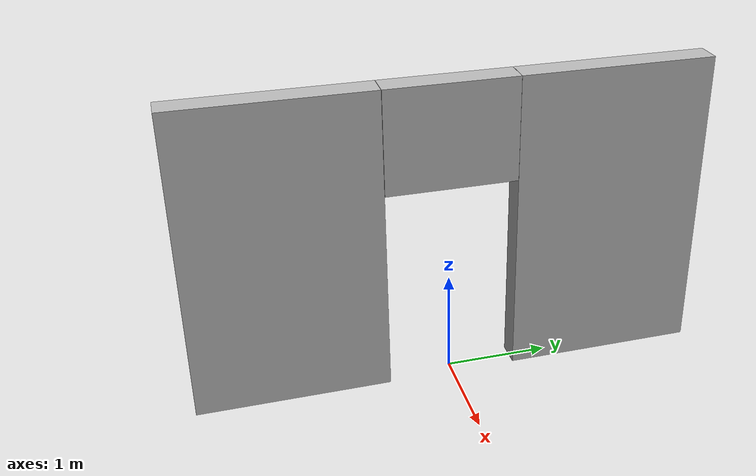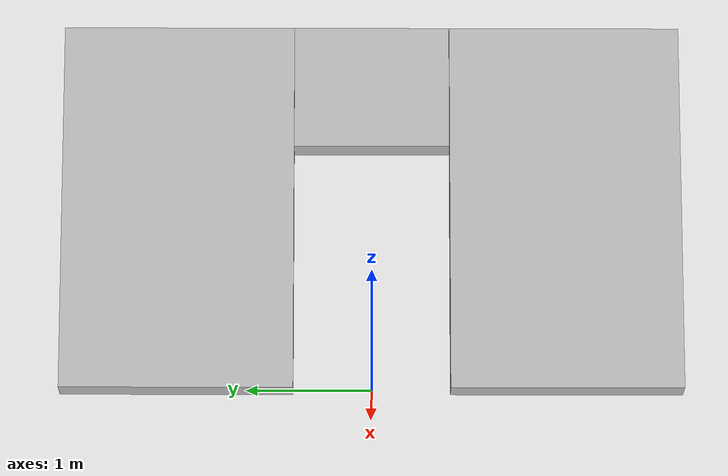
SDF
<sdf version="1.5">
  <model name="Robot">
    <link name="Robot">
      <visual name="visual_Wall.001">
        <pose>0.0 -1.5569394826889038 1.5 0.0 0.0 0.0</pose>
        <geometry>
          <box>
            <size>0.25 1.8581310510635376 3.0</size>
          </box>
        </geometry>
      </visual>
      <collision name="collision_Wall.001">
        <pose>0.0 -1.5569394826889038 1.5 0.0 0.0 0.0</pose>
        <geometry>
          <box>
            <size>0.25 1.8581310510635376 3.0</size>
          </box>
        </geometry>
      </collision>
      <visual name="visual_Wall.002">
        <pose>0.0 1.5570484399795532 1.5 0.0 0.0 0.0</pose>
        <geometry>
          <box>
            <size>0.25 1.8626335859298706 3.0</size>
          </box>
        </geometry>
      </visual>
      <collision name="collision_Wall.002">
        <pose>0.0 1.5570484399795532 1.5 0.0 0.0 0.0</pose>
        <geometry>
          <box>
            <size>0.25 1.8626335859298706 3.0</size>
          </box>
        </geometry>
      </collision>
      <visual name="visual_Wall.003">
        <pose>0.0 0.0 2.5 0.0 0.0 0.0</pose>
        <geometry>
          <box>
            <size>0.25 1.25 1.0</size>
          </box>
        </geometry>
      </visual>
      <collision name="collision_Wall.003">
        <pose>0.0 0.0 2.5 0.0 0.0 0.0</pose>
        <geometry>
          <box>
            <size>0.25 1.25 1.0</size>
          </box>
        </geometry>
      </collision>
    </link>
    <frame name="frame_InDoor">
      <pose>0.0 0.0 1.0 0.0 0.0 0.0</pose>
    </frame>
  </model>
</sdf>
